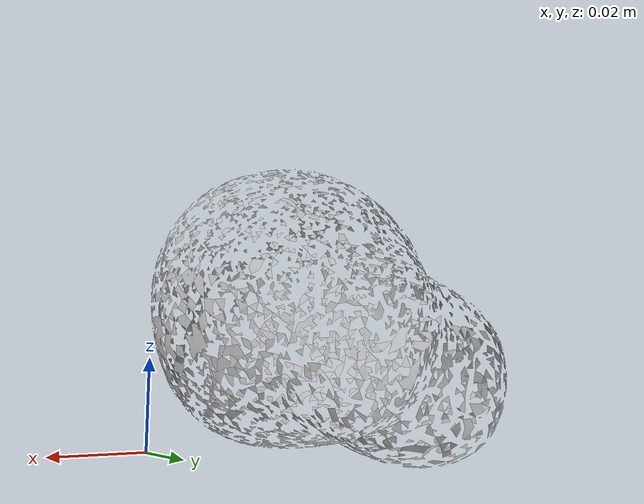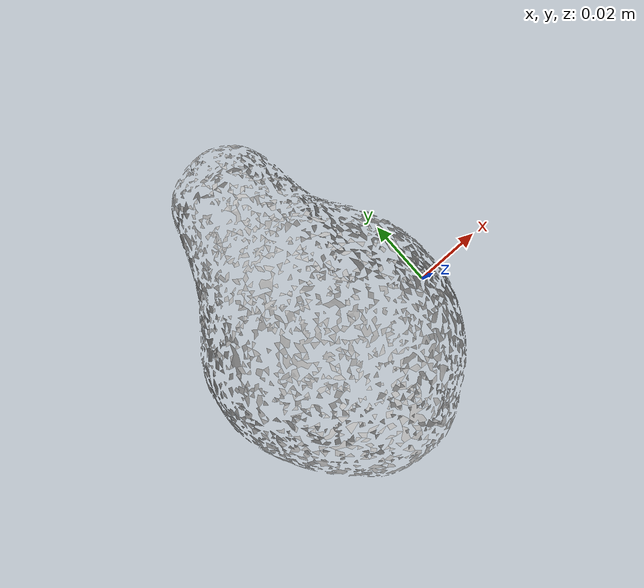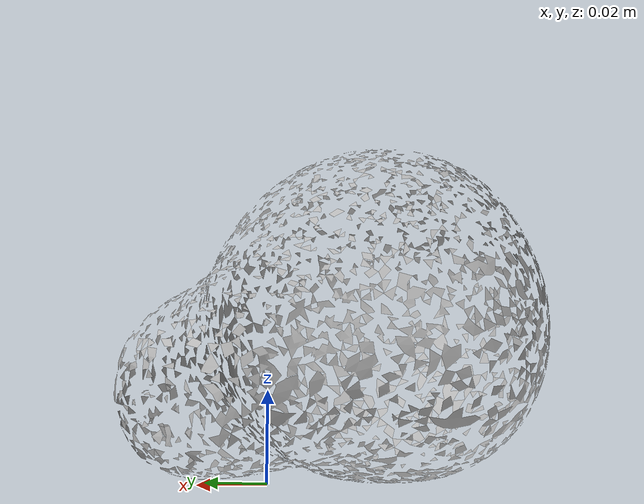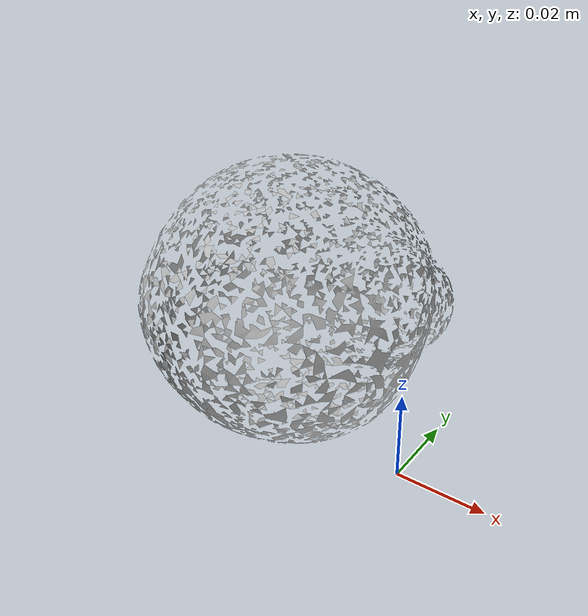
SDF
<?xml version='1.0'?>
<sdf version="1.4">
  <model name="pear">
    <static>false</static>
    <link name="link">
      <inertial>
        <pose>-0.032542733786051076 0.011075535445138571 0.030040521498604082 -1.1010518511194665 -0.742350689270459 2.744636464079532</pose>
        <mass>0.000192218040717369</mass>
        <inertia>
          <ixx>1.3071135406056031e-07</ixx>
          <ixy>-5.0643641478648837e-23</ixy>
          <ixz>-2.006411797503363e-24</ixz>
          <iyy>1.280852023276797e-07</iyy>
          <iyz>2.0107411295203735e-24</iyz>
          <izz>7.720902655923692e-08</izz>
        </inertia>
      </inertial>
      <collision name="collision">
        <geometry>
          <mesh>
            <!-- Use a downsampled mesh for collisions -->
            <uri>model://016_pear/downsampled.obj</uri>
	        </mesh>
        </geometry>
        <surface>
      </surface>
      </collision>
      <visual name="visual">
        <geometry>
          <mesh>
            <uri>model://016_pear/google_16k/textured.obj</uri>
	        </mesh>
        </geometry>
        <material>
          <script>
            <uri>model://016_pear/pear.material</uri>
            <name>pear</name>
          </script>
        </material>
      </visual>
    </link>
  </model>
</sdf>
